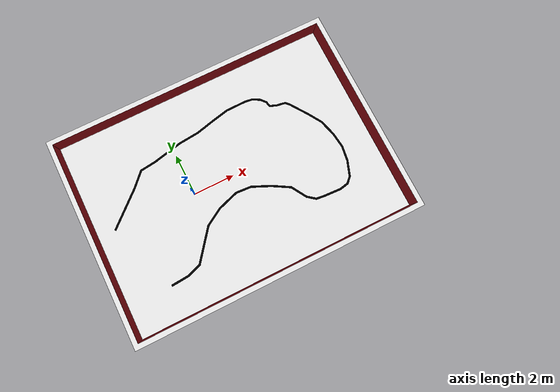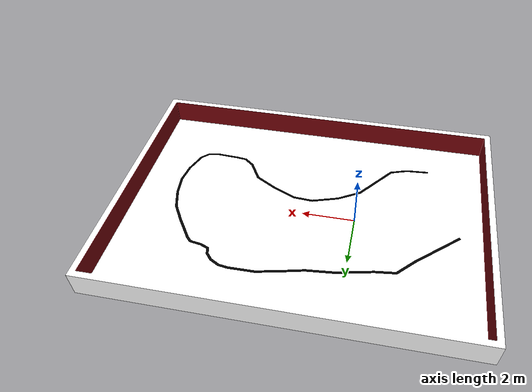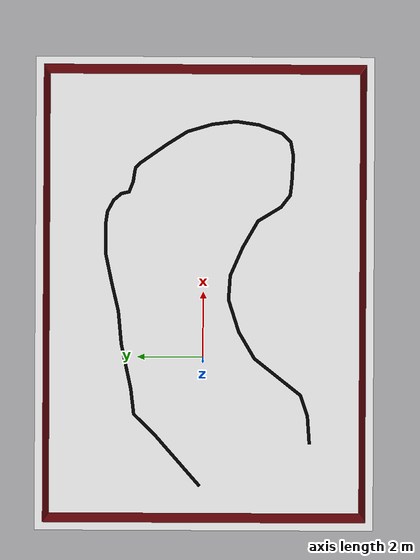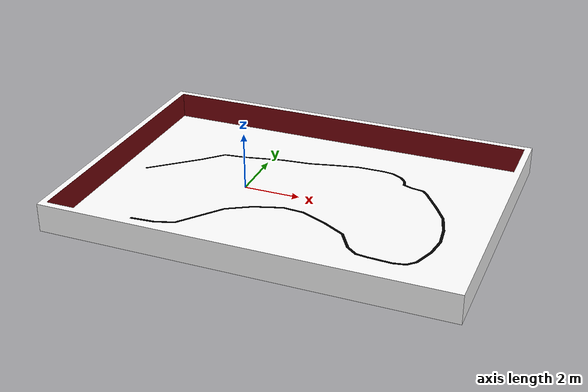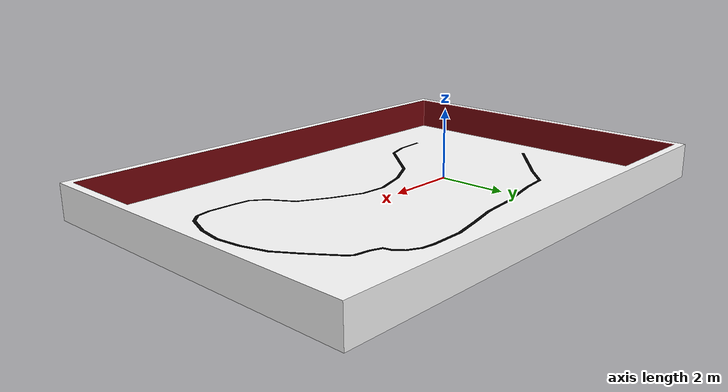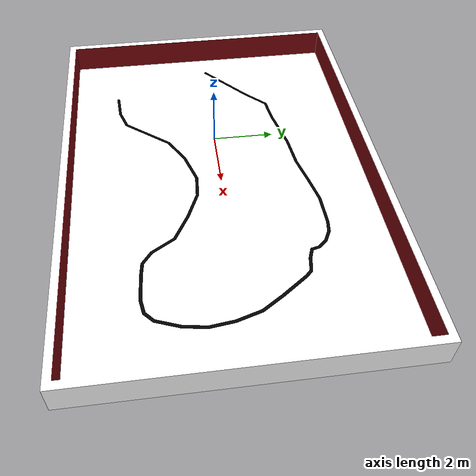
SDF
<?xml version="1.0" ?>

<sdf version="1.4">
  <world name="default">
    <include>
      <uri>model://sun</uri>
    </include>
  <model name="formulapi_track1">
      <pose>-5 -5 -0.11 0 0 0</pose> <!-- Helps to bring track off ground plane for visualizations -->
      <static>true</static>
    <link name="link">
      <inertial>
        <mass>00</mass>
      </inertial>
      <collision name="collision">
        <geometry>
          <mesh>
            <uri>file:///home/me/2/mybot_ws/src/mybot_gazebo/worlds/map.dae</uri>
          </mesh>
        </geometry>
      </collision>
      <visual name="visual">
        <geometry>
          <mesh>
            <uri>file:///home/me/2/mybot_ws/src/mybot_gazebo/worlds/map.dae</uri>
          </mesh>
        </geometry>
      </visual>
    </link>
  </model>
  </world>
</sdf>
